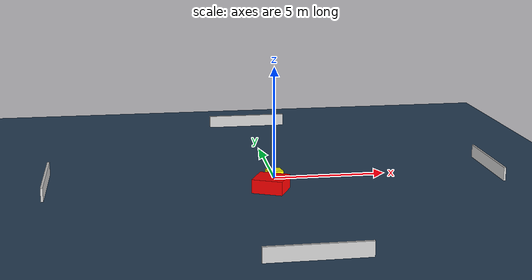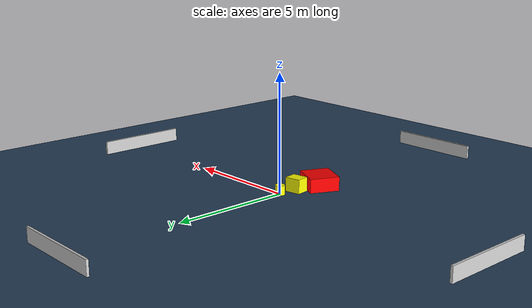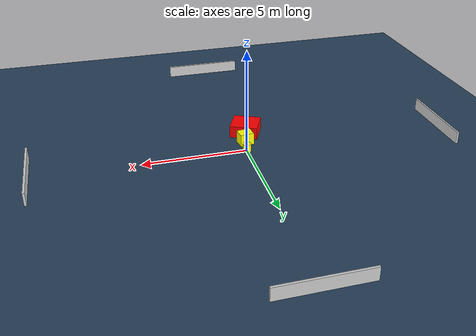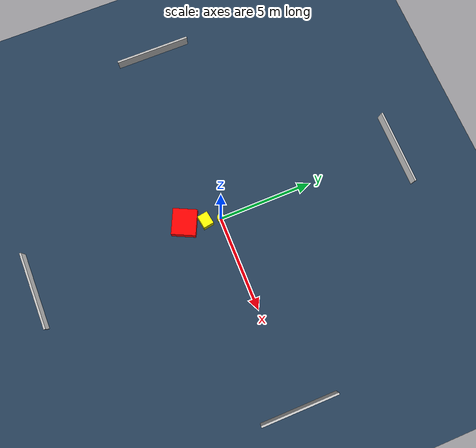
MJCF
<?xml version="1.0" ?>
<mujoco model="generated_environment">
  <option timestep="0.01" integrator="RK4" cone="elliptic"/>
  <default>
    <geom density="1"/>
  </default>
  <asset>
    <texture builtin="gradient" height="3072" name="skybox" rgb1="0.3 0.5 0.7" rgb2="0 0 0" type="skybox" width="512"/>
    <texture builtin="checker" height="300" name="groundplane" rgb1="0.2 0.3 0.4" rgb2="0.1 0.2 0.3" type="2d" width="300"/>
    <material name="groundplane" reflectance="0.2" texrepeat="5 5" texture="groundplane"/>
  </asset>
  <worldbody>
    <light dir="0 0 -1" directional="true" pos="0 0 1.5"/>
    <geom condim="3" friction="0.5 0.005 0.001" material="groundplane" name="floor" pos="0 0 0" size="0 0 0.05" type="plane"/>
    <body name="walls">
      <geom name="wall_1" condim="4" pos="-10.0 0.0 0.3" rgba="0.800000011920929 0.800000011920929 0.800000011920929 1.0" size="0.05 2.0 0.3" type="box"/>
      <geom name="wall_2" condim="4" pos="10.0 0.0 0.3" rgba="0.800000011920929 0.800000011920929 0.800000011920929 1.0" size="0.05 2.0 0.3" type="box"/>
      <geom name="wall_3" condim="4" pos="0.0 -10.0 0.3" rgba="0.800000011920929 0.800000011920929 0.800000011920929 1.0" size="2.0 0.05 0.3" type="box"/>
      <geom name="wall_4" condim="4" pos="0.0 10.0 0.3" rgba="0.800000011920929 0.800000011920929 0.800000011920929 1.0" size="2.0 0.05 0.3" type="box"/>
    </body>
    <body name="robot">
      <joint name="joint_x" type="slide" pos="0 0 0" axis="1 0 0"/>
      <joint name="joint_y" type="slide" pos="0 0 0" axis="0 1 0"/>
      <geom name="robot" type="cylinder" pos="0.0 0.0 0.2" size="0.2 0.2 0.0" mass="5.0" friction="1.0 0.005 0.0001" condim="4" rgba="1.0 1.0 0.0 1.0"/>
    </body>
    <body name="obstacle_1_movable">
      <geom name="obstacle_1_movable" condim="4" pos="-0.13392363220782807 -0.7893426226354943 0.3" euler="0 0 98.82876727460157" friction="0.0 0.005 0.001" rgba="1.0 1.0 0.0 1.0" size="0.2785016954484047 0.33929703785993315 0.3" type="box" mass="0.1"/>
      <joint type="free"/>
    </body>
    <body name="obstacle_2_static">
      <geom name="obstacle_2_static" condim="4" pos="-0.432462615425203 -1.8259368283535187 0.3" euler="0 0 154.6642868685362" friction="0.0 0.005 0.001" rgba="1.0 0.0 0.0 1.0" size="0.6739563653954066 0.6269211598332856 0.3" type="box"/>
    </body>
  </worldbody>
  <actuator>
    <motor name="actuator_x" joint="joint_x" gear="1" ctrlrange="-1 1"/>
    <motor name="actuator_y" joint="joint_y" gear="1" ctrlrange="-1 1"/>
  </actuator>
</mujoco>
